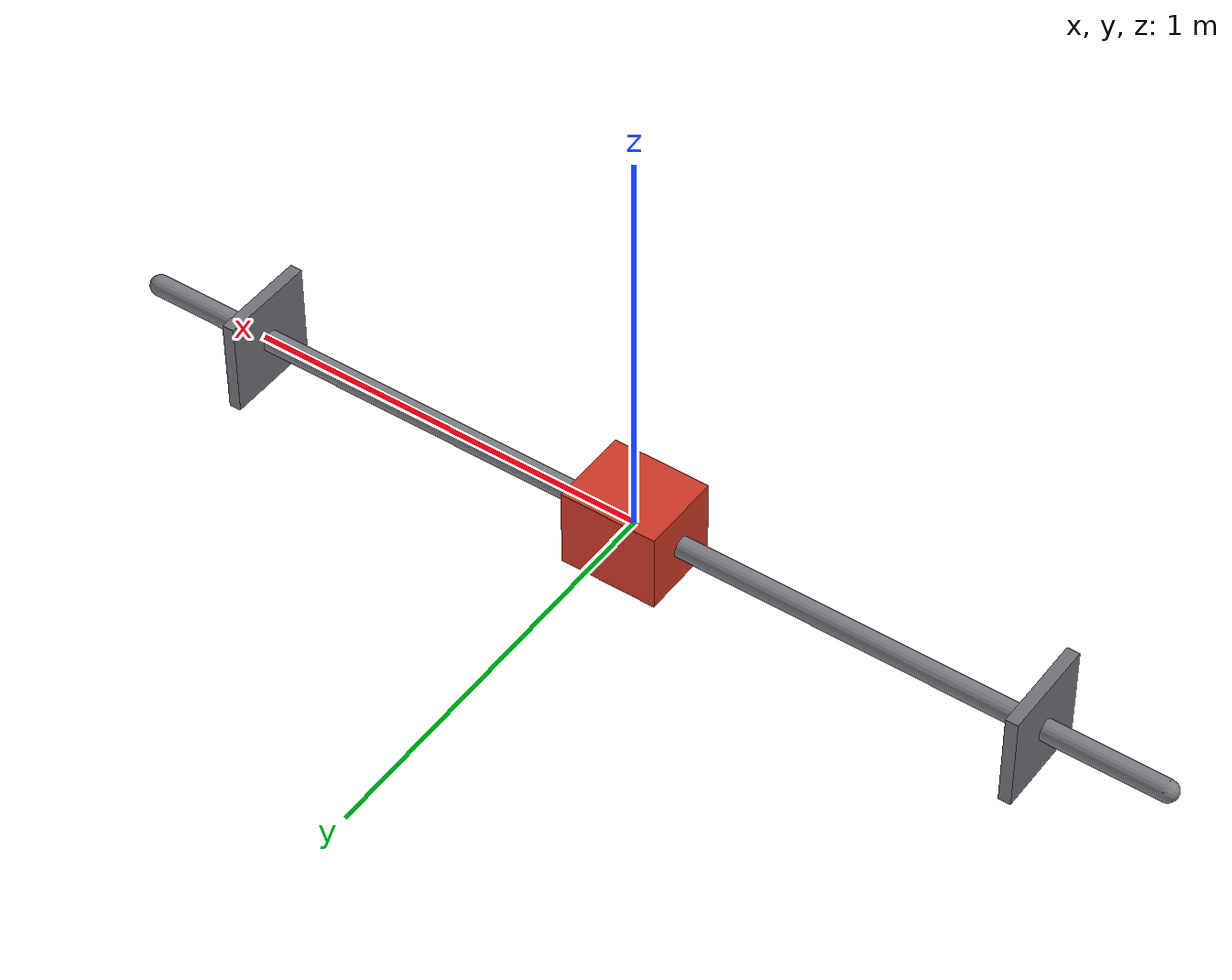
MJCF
<mujoco model="slide_joint">
    <compiler angle="radian"/>
    <option gravity="0 0 -9.81" timestep="0.001" integrator="RK4">
        <flag energy="enable"/>
    </option>

    <default>
        <geom contype="0" conaffinity="0"/>
    </default>

    <worldbody>
        <!-- Rail: polished rod along X axis -->
        <geom name="rail" type="capsule" size="0.025"
              fromto="-1.3 0 0  1.3 0 0" rgba="0.50 0.50 0.53 1"/>

        <!-- Walls at range boundaries -->
        <geom name="wall_lo" type="box" size="0.015 0.12 0.12"
              pos="-1.0 0 0" rgba="0.45 0.45 0.48 1"/>
        <geom name="wall_hi" type="box" size="0.015 0.12 0.12"
              pos="1.0 0 0" rgba="0.45 0.45 0.48 1"/>

        <!-- The sliding block -->
        <body name="block" pos="0 0 0">
            <joint name="slide" type="slide" axis="1 0 0"
                   stiffness="20" damping="0.2" armature="0.1"
                   limited="true" range="-1.0 1.0"/>
            <inertial pos="0 0 0" mass="1.0" diaginertia="0.01 0.01 0.01"/>
            <geom name="block" type="box" size="0.12 0.10 0.10"
                  rgba="0.82 0.22 0.15 1"
                  contype="1" conaffinity="1"/>
        </body>
    </worldbody>
</mujoco>
